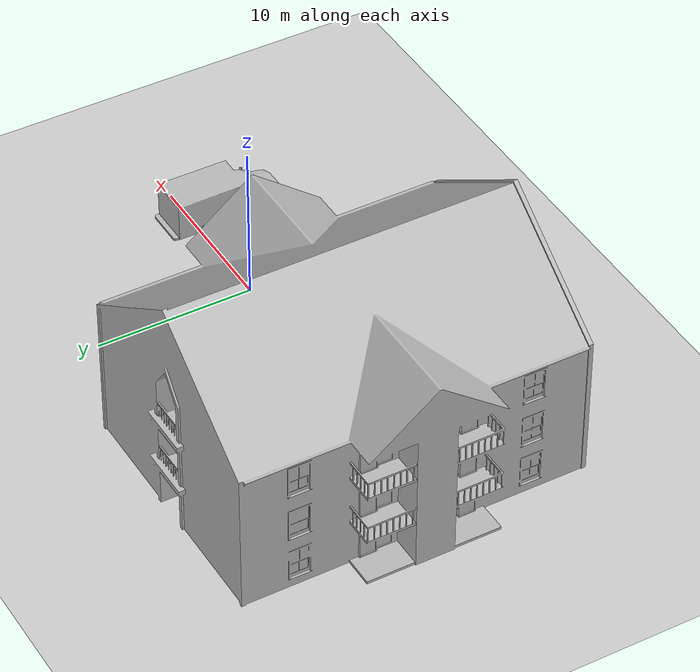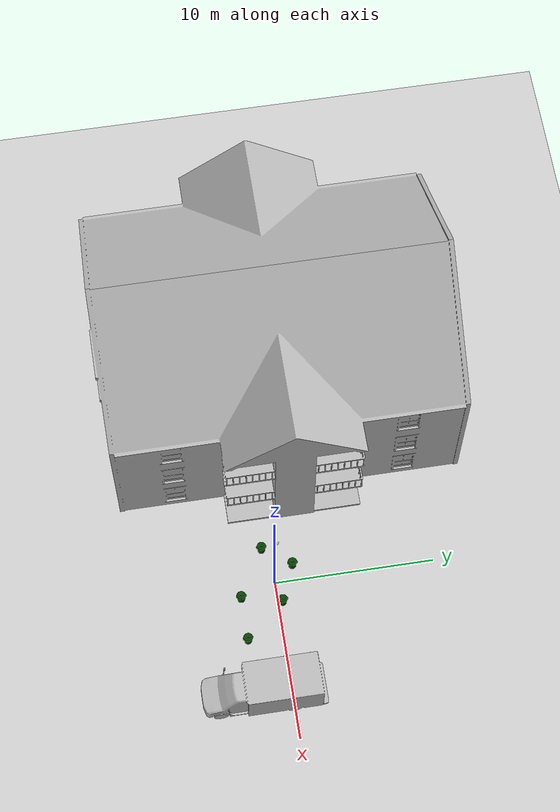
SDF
<sdf version="1.7">
 <world name="default">
  <light name="sun" type="directional">
   <pose>0 0 10 0 -0 0</pose>
   <diffuse>0.8 0.8 0.8 1</diffuse>
   <specular>0.2 0.2 0.2 1</specular>
   <attenuation>
    <range>1000</range>
    <constant>0.9</constant>
    <linear>0.01</linear>
    <quadratic>0.001</quadratic>
   </attenuation>
   <direction>-0.5 0.1 -0.9</direction>
   <spot><inner_angle>0</inner_angle><outer_angle>0</outer_angle><falloff>0</falloff></spot>
  </light>
  <model name="ground_plane">
   <static>1</static>
   <link name="link">
    <collision name="collision">
     <geometry><plane><normal>0 0 1</normal><size>100 100</size></plane></geometry>
     <surface><friction><ode><mu>100</mu><mu2>50</mu2></ode></friction></surface>
    </collision>
    <visual name="visual">
     <cast_shadows>0</cast_shadows>
     <geometry><plane><normal>0 0 1</normal><size>100 100</size></plane></geometry>
     <material>
      <script><uri>file://media/materials/scripts/gazebo.material</uri><name>Gazebo/Grey</name></script>
     </material>
    </visual>
   </link>
  </model>
  <gravity>0 0 -9.8</gravity>
  <magnetic_field>6e-06 2.3e-05 -4.2e-05</magnetic_field>
  <atmosphere type="adiabatic"/>
  <physics type="ode">
   <max_step_size>0.001</max_step_size>
   <real_time_factor>1</real_time_factor>
   <real_time_update_rate>1000</real_time_update_rate>
  </physics>
  <scene><ambient>0.4 0.4 0.4 1</ambient><background>0.7 0.7 0.7 1</background><shadows>1</shadows></scene>
  <audio><device>default</device></audio>
  <spherical_coordinates>
   <surface_model>EARTH_WGS84</surface_model>
   <latitude_deg>0</latitude_deg>
   <longitude_deg>0</longitude_deg>
   <elevation>0</elevation>
   <heading_deg>0</heading_deg>
  </spherical_coordinates>
  <model name="first_2015_trash_can">
   <link name="link">
    <inertial>
     <pose>0 0 0.3683 0 -0 0</pose>
     <mass>4.83076</mass>
     <inertia>
      <ixx>0.281534</ixx>
      <ixy>0</ixy>
      <ixz>0</ixz>
      <iyy>0.281534</iyy>
      <iyz>0</iyz>
      <izz>0.126223</izz>
     </inertia>
    </inertial>
    <visual name="visual">
     <geometry><mesh><uri>model://first_2015_trash_can/meshes/trash_can.dae</uri></mesh></geometry>
    </visual>
    <collision name="collision">
     <geometry><mesh><uri>model://first_2015_trash_can/meshes/trash_can.dae</uri></mesh></geometry>
    </collision>
   </link>
   <pose>-2.27508 -0.48513 -1e-06 -1.8e-05 -9e-06 -0.001029</pose>
  </model>
  <model name="first_2015_trash_can_0">
   <link name="link">
    <inertial>
     <pose>0 0 0.3683 0 -0 0</pose>
     <mass>4.83076</mass>
     <inertia>
      <ixx>0.281534</ixx>
      <ixy>0</ixy>
      <ixz>0</ixz>
      <iyy>0.281534</iyy>
      <iyz>0</iyz>
      <izz>0.126223</izz>
     </inertia>
    </inertial>
    <visual name="visual">
     <geometry><mesh><uri>model://first_2015_trash_can/meshes/trash_can.dae</uri></mesh></geometry>
    </visual>
    <collision name="collision">
     <geometry><mesh><uri>model://first_2015_trash_can/meshes/trash_can.dae</uri></mesh></geometry>
    </collision>
   </link>
   <pose>0.728012 -2.1924 -5e-06 -5e-06 2.2e-05 -0.001056</pose>
  </model>
  <model name="first_2015_trash_can_1">
   <link name="link">
    <inertial>
     <pose>0 0 0.3683 0 -0 0</pose>
     <mass>4.83076</mass>
     <inertia>
      <ixx>0.281534</ixx>
      <ixy>0</ixy>
      <ixz>0</ixz>
      <iyy>0.281534</iyy>
      <iyz>0</iyz>
      <izz>0.126223</izz>
     </inertia>
    </inertial>
    <visual name="visual">
     <geometry><mesh><uri>model://first_2015_trash_can/meshes/trash_can.dae</uri></mesh></geometry>
    </visual>
    <collision name="collision">
     <geometry><mesh><uri>model://first_2015_trash_can/meshes/trash_can.dae</uri></mesh></geometry>
    </collision>
   </link>
   <pose>3.44964 -2.17077 -7e-06 3e-05 1e-06 -0.00124</pose>
  </model>
  <model name="first_2015_trash_can_2">
   <link name="link">
    <inertial>
     <pose>0 0 0.3683 0 -0 0</pose>
     <mass>4.83076</mass>
     <inertia>
      <ixx>0.281534</ixx>
      <ixy>0</ixy>
      <ixz>0</ixz>
      <iyy>0.281534</iyy>
      <iyz>0</iyz>
      <izz>0.126223</izz>
     </inertia>
    </inertial>
    <visual name="visual">
     <geometry><mesh><uri>model://first_2015_trash_can/meshes/trash_can.dae</uri></mesh></geometry>
    </visual>
    <collision name="collision">
     <geometry><mesh><uri>model://first_2015_trash_can/meshes/trash_can.dae</uri></mesh></geometry>
    </collision>
   </link>
   <pose>-0.973225 1.27137 -3e-06 -2e-06 1.2e-05 -0.000809</pose>
  </model>
  <model name="first_2015_trash_can_3">
   <link name="link">
    <inertial>
     <pose>0 0 0.3683 0 -0 0</pose>
     <mass>4.83076</mass>
     <inertia>
      <ixx>0.281534</ixx>
      <ixy>0</ixy>
      <ixz>0</ixz>
      <iyy>0.281534</iyy>
      <iyz>0</iyz>
      <izz>0.126223</izz>
     </inertia>
    </inertial>
    <visual name="visual">
     <geometry><mesh><uri>model://first_2015_trash_can/meshes/trash_can.dae</uri></mesh></geometry>
    </visual>
    <collision name="collision">
     <geometry><mesh><uri>model://first_2015_trash_can/meshes/trash_can.dae</uri></mesh></geometry>
    </collision>
   </link>
   <pose>1.31188 0.313522 -4e-06 -5e-06 5e-06 -0.000453</pose>
  </model>
  <model name="apartment">
   <static>1</static>
   <link name="link">
    <collision name="collision">
     <geometry><mesh><uri>model://apartment/meshes/apartment.dae</uri></mesh></geometry>
    </collision>
    <visual name="visual">
     <geometry><mesh><uri>model://apartment/meshes/apartment.dae</uri></mesh></geometry>
    </visual>
   </link>
   <pose>-14.2669 1.93808 0 0 -0 0</pose>
  </model>
  <model name="ambulance">
   <static>1</static>
   <link name="link">
    <collision name="collision">
     <geometry>
      <mesh><scale>0.0254 0.0254 0.0254</scale><uri>model://ambulance/meshes/ambulance.obj</uri></mesh>
     </geometry>
    </collision>
    <visual name="visual">
     <geometry>
      <mesh><scale>0.0254 0.0254 0.0254</scale><uri>model://ambulance/meshes/ambulance.obj</uri></mesh>
     </geometry>
    </visual>
   </link>
   <pose>6.92863 -1.63926 0 0 -0 0</pose>
  </model>
  <model name="Mailbox">
   <link name="link">
    <collision name="collision">
     <geometry><mesh><uri>model://mailbox/meshes/mailbox.dae</uri></mesh></geometry>
    </collision>
    <visual name="visual">
     <geometry><mesh><uri>model://mailbox/meshes/mailbox.dae</uri></mesh></geometry>
     <material>
      <script>
       <uri>model://mailbox/materials/scripts</uri>
       <uri>model://mailbox/materials/textures</uri>
       <name>Mailbox/Diffuse</name>
      </script>
     </material>
    </visual>
    <inertial>
     <inertia><ixx>1</ixx><ixy>0</ixy><ixz>0</ixz><iyy>1</iyy><iyz>0</iyz><izz>1</izz></inertia>
     <mass>1</mass>
    </inertial>
   </link>
   <pose>-2.26015 0.421986 3.3e-05 -0.001266 -0.000438 7e-05</pose>
  </model>
 </world>
</sdf>
